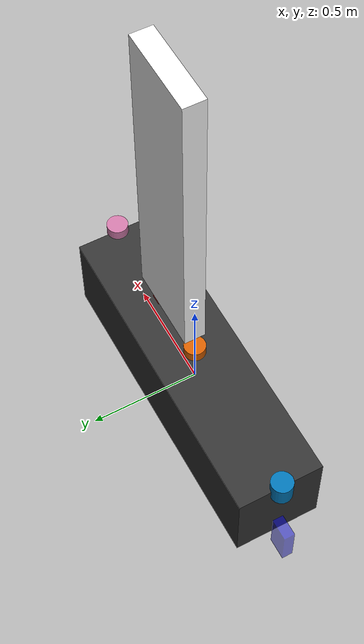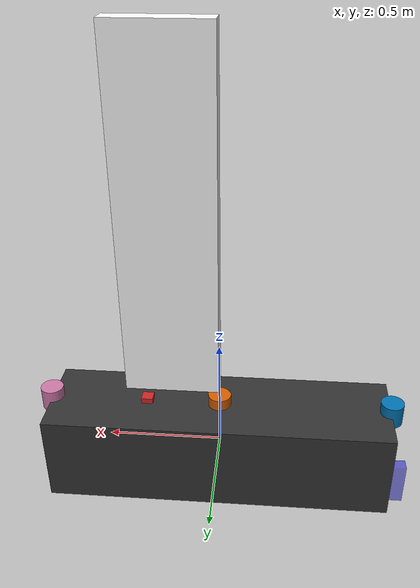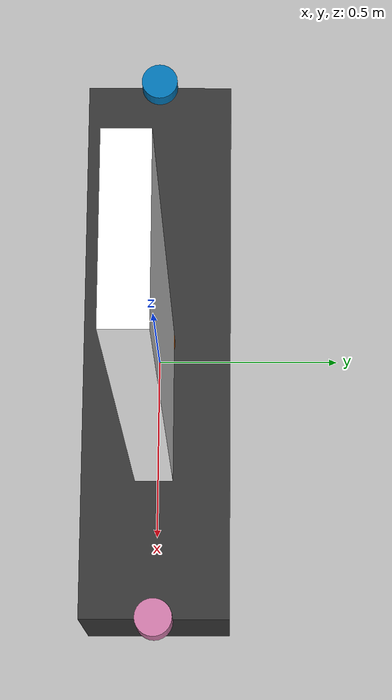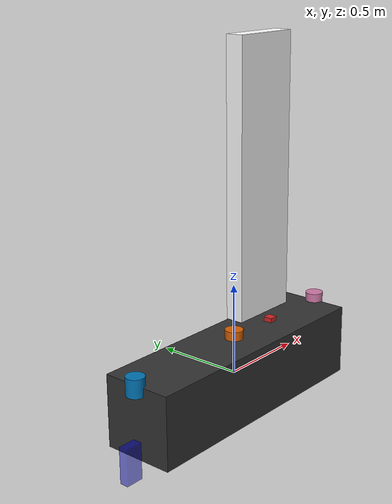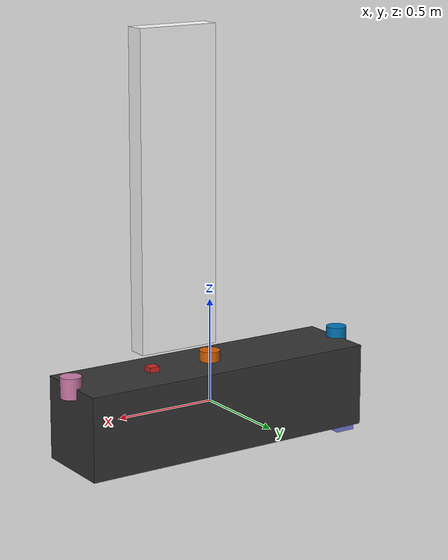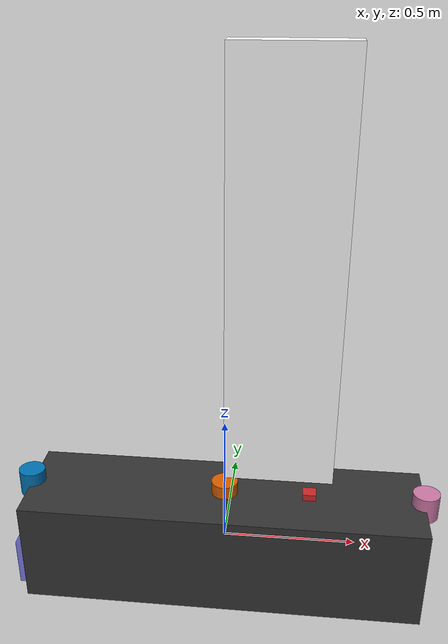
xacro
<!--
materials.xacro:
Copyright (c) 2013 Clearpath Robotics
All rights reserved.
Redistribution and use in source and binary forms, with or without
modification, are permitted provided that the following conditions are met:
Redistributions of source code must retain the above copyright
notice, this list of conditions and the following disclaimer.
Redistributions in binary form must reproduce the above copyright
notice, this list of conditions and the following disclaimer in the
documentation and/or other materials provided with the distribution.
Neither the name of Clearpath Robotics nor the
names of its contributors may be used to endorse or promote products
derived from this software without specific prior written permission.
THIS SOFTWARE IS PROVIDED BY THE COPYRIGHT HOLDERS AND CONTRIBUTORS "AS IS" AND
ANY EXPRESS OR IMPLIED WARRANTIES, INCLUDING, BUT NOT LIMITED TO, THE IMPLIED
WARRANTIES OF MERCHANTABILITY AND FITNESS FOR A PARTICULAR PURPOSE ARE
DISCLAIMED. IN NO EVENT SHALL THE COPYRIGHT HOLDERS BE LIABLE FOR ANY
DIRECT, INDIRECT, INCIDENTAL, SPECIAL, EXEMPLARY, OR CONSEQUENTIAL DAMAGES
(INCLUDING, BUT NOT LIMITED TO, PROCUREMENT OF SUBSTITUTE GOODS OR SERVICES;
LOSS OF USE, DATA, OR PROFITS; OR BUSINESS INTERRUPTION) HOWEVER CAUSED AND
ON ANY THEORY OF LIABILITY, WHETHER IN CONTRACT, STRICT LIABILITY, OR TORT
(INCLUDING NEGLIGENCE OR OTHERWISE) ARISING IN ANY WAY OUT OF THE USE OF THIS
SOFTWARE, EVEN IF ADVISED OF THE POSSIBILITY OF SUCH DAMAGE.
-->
<?xml version="1.0"?>
<robot xmlns:xacro="http://www.ros.org/wiki/xacro"
       name="sailboat">
    <!-- Defines the "sailboat_base" macro -->
    <xacro:include filename="$(find sailboat_gazebo)/urdf/sailboat_base.xacro" />

    <!-- Defines the "usv_gazebo" macro which implements the plugin for USV dynamics -->
    <xacro:include filename="$(find usv_gazebo_plugins)/urdf/usv_gazebo_dynamics_plugin.xacro" />

    <xacro:include filename="$(find sailboat_gazebo_plugins)/urdf/sailboat_gazebo_dynamics_plugin.xacro" />

    <!-- Defines the macro for simulated GPS -->
    <xacro:include filename="$(find sailboat_gazebo)/urdf/gps.xacro" />

    <!-- Defines the macro for simulated IMU -->
    <xacro:include filename="$(find sailboat_gazebo)/urdf/imu.xacro" />

    <!-- Defines the macro for including simulated camera -->
    <xacro:include filename="$(find sailboat_gazebo)/urdf/camera.xacro" />

    <!-- Defines the macro for simulated laser -->

    <!-- Call the macros defined above -->
    <!-- includes basic description witout plugins -->
    <xacro:sailboat_base />
    <!-- USV dynamic model -->
    <xacro:sailboat_gazebo name="sailboat"/>

    <!-- Optional sensor plugins - called by macros defined above -->
    <xacro:sailboat_gps_gazebo name="sailboat"/>

    <xacro:sailboat_imu_gazebo name="sailboat"/>

    <xacro:sailboat_camera_gazebo name="sailboat"/>

</robot>

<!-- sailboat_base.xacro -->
<robot name="sailboat" xmlns:xacro="http://www.ros.org/wiki/xacro">
  <xacro:macro name="sailboat_base">
  <!-- Included URDF/XACRO Files -->
  <xacro:include filename="$(find sailboat_gazebo)/urdf/materials.xacro" />

  <!-- PROPERTY LIST -->
  <!--All units in m-kg-s-radians unit system -->
  <property name="M_PI" value="3.1415926535897931" />

  <!-- BASE-FOOTPRINT -->
  <!-- base_footprint is a fictitious link(frame) that is on the ground right below base_link origin, navigation stack depends on this frame -->
  <link name="base_footprint">
  <inertial>
    <mass value="0.0001" />
    <origin xyz="0 0 0" />
    <inertia ixx="0.0001" ixy="0.0" ixz="0.0"
             iyy="0.0001" iyz="0.0"
             izz="0.0001" />
  </inertial>

  <visual>
    <origin xyz="0 0 0" rpy="0 0 0" />
    <geometry>
      <box size="0.001 0.001 0.001" />
    </geometry>
  </visual>
  </link>

  <gazebo reference="base_footprint">
    <turnGravityOff>false</turnGravityOff>
  </gazebo>

  <joint name="base_footprint_joint" type="fixed">
    <origin xyz="0 0 0" rpy="0 0 0" />
    <parent link="base_footprint"/>
    <child link="base_link" />
  </joint>

  <!-- BASE-LINK -->
  <!--Actual body/chassis of the robot-->
  <link name="base_link">
    <inertial>
      <mass value="15.3" />
      <origin xyz="0 0 0" />
      <inertia ixx="5" ixy="0" ixz="0" iyy="10" iyz="0" izz="5" />
    </inertial>

    <visual>
      <origin xyz="0 0 0" rpy="0 0 0" />
      <geometry>
        <box size="1.5 0.4 0.4"/>
      </geometry>
      <material name="DarkGray" />
    </visual>

    <collision>
      <origin xyz="0 0 0" rpy="0 0 0" />
      <geometry>
        <box size = "1.5 0.6 0.6"/> <!--making it slightly bigger in x and z direction-->
      </geometry>
    </collision>
  </link>

  <gazebo reference="base_link">
    <material>Gazebo/FlatBlack</material>
    <turnGravityOff>false</turnGravityOff>
  </gazebo>

  <!-- Sail -->
  <link name="sail">
    <gravity>0</gravity>
    <visual>
      <geometry>
        <box size="0.4 0.1 1.5"/>
      </geometry>
      <origin rpy="0 0 0" xyz="0 0 0.75"/>
      <material name="White"/>
    </visual>
  </link>

  <gazebo reference="sail">
    <material>Gazebo/White</material>
    <turnGravityOff>false</turnGravityOff>
  </gazebo>

  <!-- Rudder -->
  <link name="rudder">
    <gravity>0</gravity>
    <visual>
      <geometry>
        <box size="0.1 0.05 0.2"/>
      </geometry>
      <origin rpy="0 0 0" xyz="-0.05 0 -0.1"/>
      <material name="Blue"/>
    </visual>
  </link>

  <gazebo reference="rudder">
    <material>Gazebo/Bule</material>
    <turnGravityOff>false</turnGravityOff>
  </gazebo>

  <link name="GPS">
    <visual>
      <geometry>
        <cylinder length="0.1" radius="0.05"/>
      </geometry>
    </visual>
  </link>

  <link name="AHRS">
    <visual>
      <geometry>
        <cylinder length="0.1" radius="0.05"/>
      </geometry>
    </visual>
  </link>

  <link name="WTST">
    <visual>
      <geometry>
        <cylinder length="0.1" radius="0.05"/>
      </geometry>
    </visual>
  </link>

  <joint name="boat_to_sail" type="fixed">
    <parent link="base_link"/>
    <child link="sail"/>
    <axis xyz="0 0 1"/>
    <origin xyz="0.2 0 .3"/>
  </joint>

  <joint name="boat_to_rudder" type="fixed">
    <parent link="base_link"/>
    <child link="rudder"/>
    <axis xyz="0 0 1"/>
    <origin xyz="-0.75 0 -0.1"/>
  </joint>

  <joint name="boat_to_GPS" type="fixed">
    <parent link="base_link"/>
    <child link="GPS"/>
    <origin xyz="-0.75 0 0.2"/>
  </joint>

  <joint name="boat_to_AHRS" type="fixed">
    <parent link="base_link"/>
    <child link="AHRS"/>
    <origin xyz="0 0 0.2"/>
  </joint>

    <joint name="boat_to_WTST" type="fixed">
    <parent link="base_link"/>
    <child link="WTST"/>
    <origin xyz="0.75 0 0.2"/>
  </joint>

  <!-- Define a location for the camera to sit -->
  <xacro:property name="camera_size" value="0.05" /> <!-- Size of square 'camera' box -->

  <joint name="camera_joint" type="fixed">
    <axis xyz="0 1 0" />
    <origin xyz="0.32 0 0.2" rpy="0 0 0"/>
    <parent link="base_link"/>
    <child link="camera_link"/>
  </joint>

  <link name="camera_link">
      <collision>
        <origin xyz="0 0 0" rpy="0 0 0"/>
        <geometry>
          <box size="${camera_size} ${camera_size} ${camera_size}"/>
        </geometry>
      </collision>
      <visual>
        <origin xyz="0 0 0" rpy="0 0 0"/>
        <geometry>
          <box size="${camera_size} ${camera_size} ${camera_size}"/>
        </geometry>
        <material name="red"/>
      </visual>
      <inertial>
        <mass value="1e-5" />
        <origin xyz="0 0 0" rpy="0 0 0"/>
        <inertia ixx="1e-6" ixy="0" ixz="0" iyy="1e-6" iyz="0" izz="1e-6" />
      </inertial>
  </link>
  <gazebo reference="camera_link">
    <material>Gazebo/Red</material>
    <turnGravityOff>false</turnGravityOff>
  </gazebo>

  <!-- Define a location for the laser to sit -->
  <xacro:property name="laser_size" value="0.05" /> <!-- Size of square 'camera' box -->

  <joint name="laser_joint" type="fixed">
      <axis xyz="0 1 0" />
      <origin xyz="0.0 0 0.2" rpy="0 0 0"/>
      <parent link="base_link"/>
      <child link="laser_link"/>
  </joint>

  <link name="laser_link">
      <collision>
          <origin xyz="0 0 0" rpy="0 0 0"/>
          <geometry>
              <box size="${laser_size} ${laser_size} ${laser_size}"/>
          </geometry>
      </collision>
      <visual>
          <origin xyz="0 0 0" rpy="0 0 0"/>
          <geometry>
              <box size="${laser_size} ${laser_size} ${laser_size}"/>
          </geometry>
          <material name="red"/>
      </visual>
      <inertial>
          <mass value="1e-5" />
          <origin xyz="0 0 0" rpy="0 0 0"/>
          <inertia ixx="1e-6" ixy="0" ixz="0" iyy="1e-6" iyz="0" izz="1e-6" />
      </inertial>
  </link>
  <gazebo reference="laser_link">
      <material>Gazebo/Red</material>
      <turnGravityOff>false</turnGravityOff>
  </gazebo>
  </xacro:macro>
</robot>

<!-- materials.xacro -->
<robot>
	<material name="Black">
		<color rgba="0.0 0.0 0.0 1.0"/>
	</material>

	<material name="Gray">
		<color rgba="0.7 0.7 0.7 1.0"/>
	</material>

	<material name="DarkGray">
		<color rgba="0.2 0.2 0.2 1.0"/>
	</material>

	<material name="White">
		<color rgba="1.0 1.0 1.0 1.0"/>
	</material>

	<material name="Yellow">
		<color rgba="0.8 0.8 0.0 1.0"/>
	</material>

	<material name="Blue">
		<color rgba="0 0 0.8 0.5"/>
	</material>
</robot>
